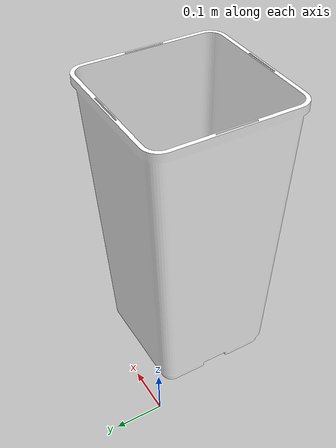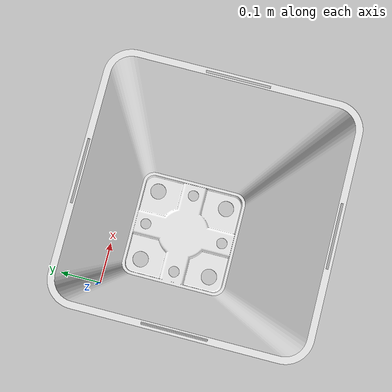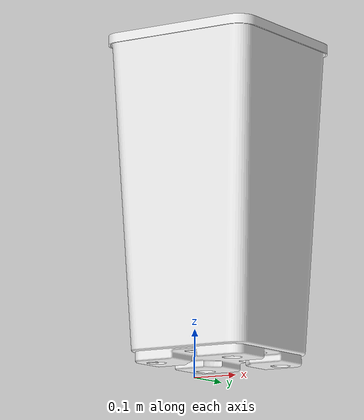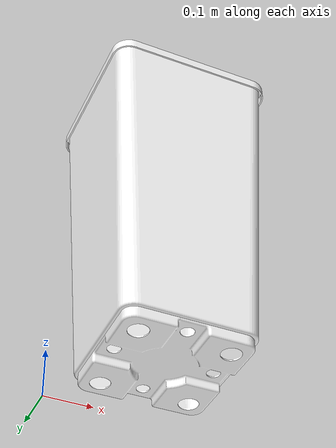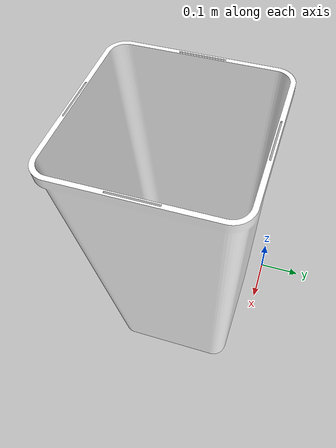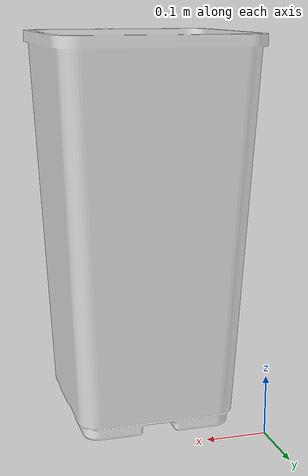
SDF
<?xml version="1.0" ?>
<sdf version="1.6">

  <!-- Model -->
  <model name="reciclaje">
    <pose>0 0 0 0 0 0</pose>
    <static>true</static>

    <!-- Link -->
    <link name="link">
      <visual name="visual">
        <geometry>
          <mesh>
            <scale>1 1 1</scale>
            <uri>model://reciclaje/meshes/reciclaje.dae</uri>
          </mesh>
        </geometry>
        <material>
          <script>
            <uri>model://reciclaje/materials/textures</uri>
            <uri>model://reciclaje/materials/scripts</uri>
            <name>ReciclajeTexture</name>
          </script>
          <ambient>1 1 1 1</ambient>
          <diffuse>1 1 1 1</diffuse>
          <specular>1 1 1 1</specular>
          <emissive>0 0 0 1</emissive>
        </material>
      </visual>

    </link>

  </model>
</sdf>
